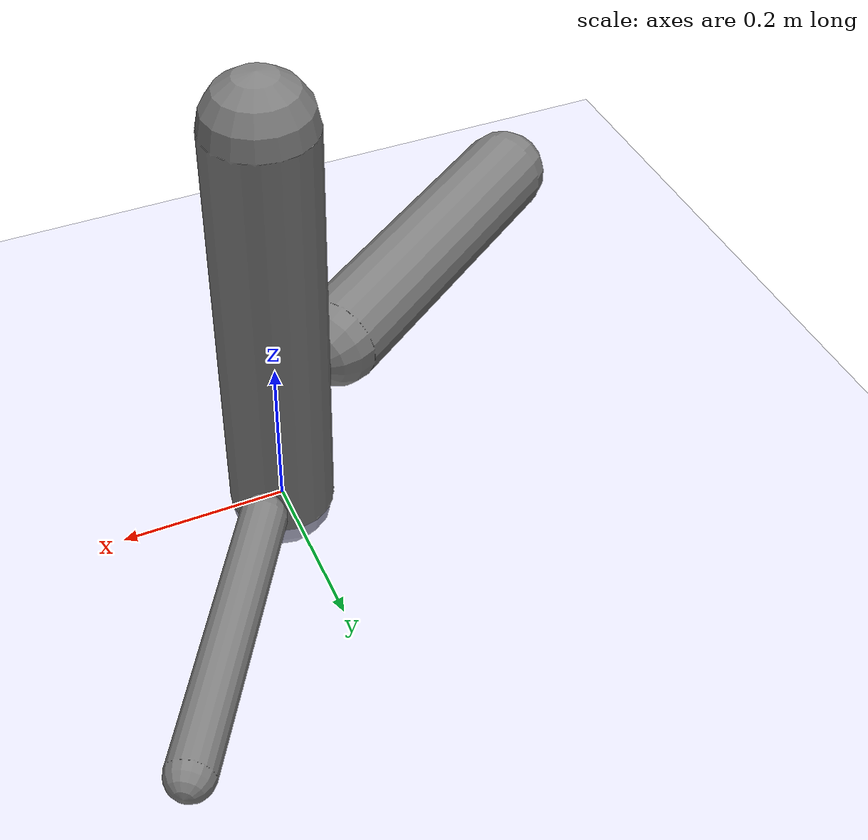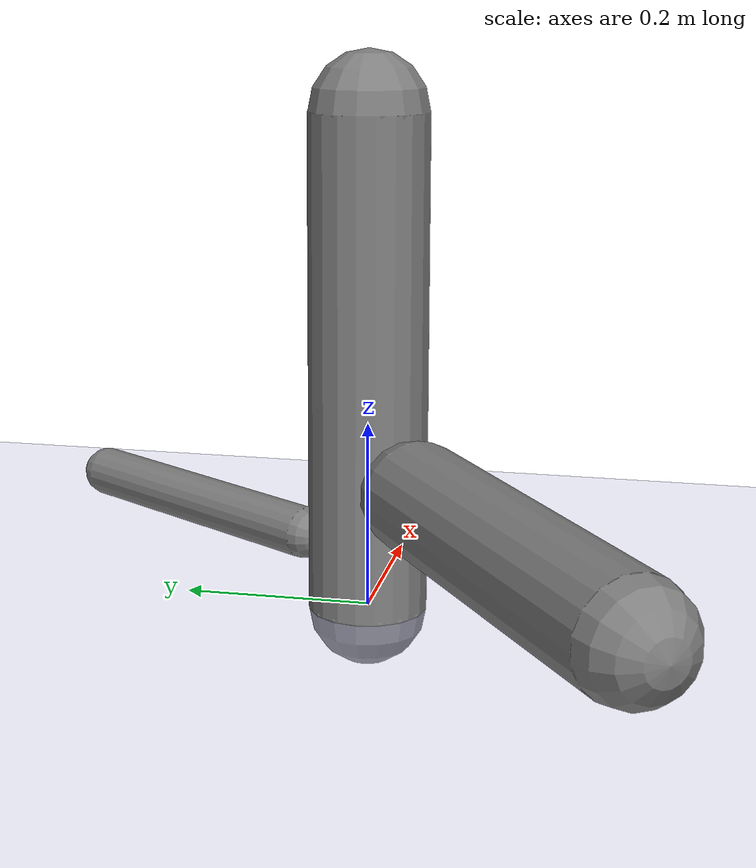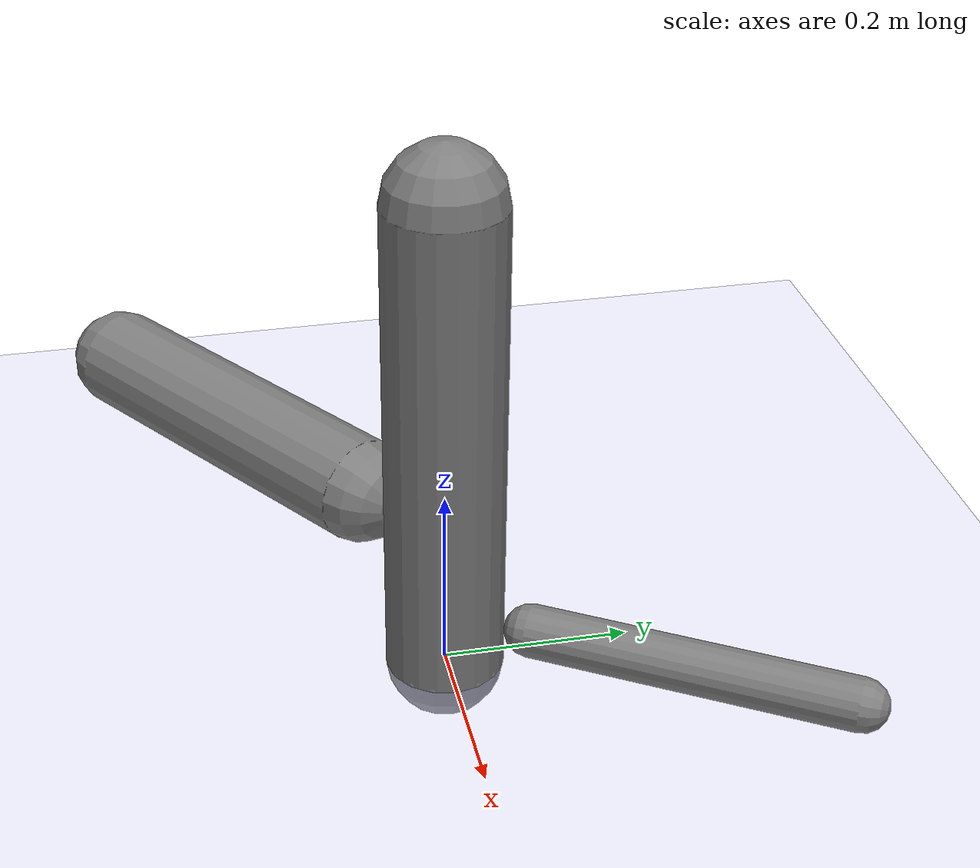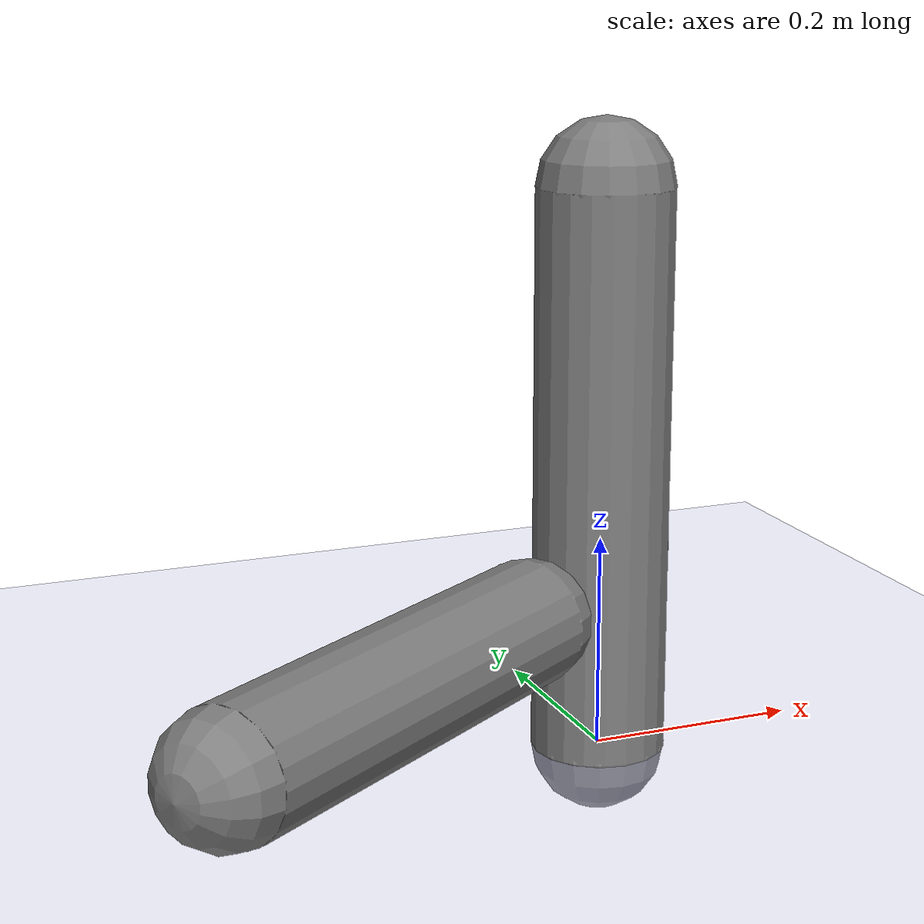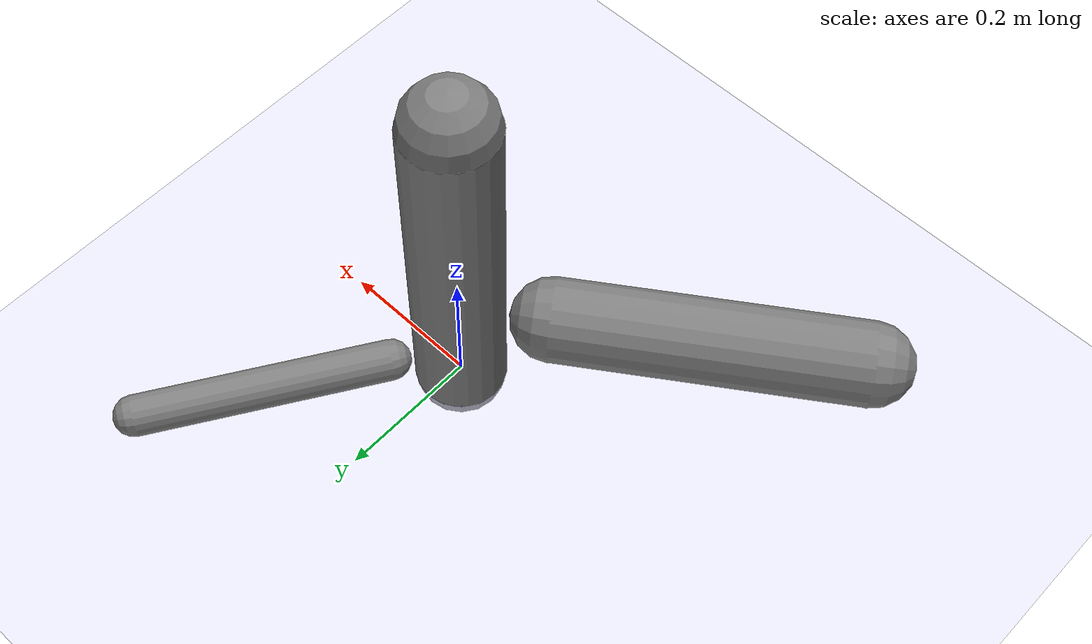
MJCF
<?xml version='1.0' encoding='UTF-8'?>
<mujoco model="robot_model">
  <worldbody>
    <light name="light" pos="0 -3 10" dir="0 0.5 -1" diffuse=".8 .8 .8" specular="0.1 0.1 0.1"/>
    <geom name="floor" type="plane" size="10.0 10.0 0.1" pos="0 0 0" rgba="0.8 0.8 1 1" contype="2" conaffinity="1"/>
    <body name="limb0" pos="0 0 0">
      <geom name="limb0_geom" type="capsule" fromto="0 0 0 0 0 0.525765723199866" size="0.06318729198528299" density="471.75457777310925" contype="1" conaffinity="2"/>
      <site type="sphere" size="0.01" name="limb0_site0" pos="-0.10205787699919176 -0.06987982683101357 0.15546221925872275" quat="0.7071067811865476 0.39948943052718733 -0.5834451087266594 0.0"/>
      <site type="sphere" size="0.01" name="limb0_site1" pos="0.05054136097072201 0.08099255214024285 0.058753170928810106" quat="0.7071067811865476 -0.5998881304749015 0.37434506930815514 0.0"/>
      <freejoint name="limb0_root"/>
      <body name="limb1" pos="-0.10205787699919176 -0.06987982683101357 0.15546221925872275" quat="0.7071067811865476 0.39948943052718733 -0.5834451087266594 0.0">
        <geom name="limb1_geom" type="capsule" fromto="0 0 0 0 0 0.40986089410600157" size="0.05650183629814618" density="557.4904918084212" contype="1" conaffinity="2"/>
        <joint name="joint_limb0_limb1_0" type="hinge" axis="1 0 0" range="-93.62338159474545 93.62338159474545" damping="5.0"/>
      </body>
      <body name="limb2" pos="0.05054136097072201 0.08099255214024285 0.058753170928810106" quat="0.7071067811865476 -0.5998881304749015 0.37434506930815514 0.0">
        <geom name="limb2_geom" type="capsule" fromto="0 0 0 0 0 0.34404380395359024" size="0.028281146102719583" density="411.2472681191295" contype="1" conaffinity="2"/>
        <joint name="joint_limb0_limb2_0" type="hinge" axis="0 1 0" range="-21.190973834101783 21.190973834101783" damping="5.0"/>
      </body>
    </body>
  </worldbody>
  <actuator>
    <position name="position_actuator_joint_limb0_limb1_0" joint="joint_limb0_limb1_0" gear="1.3885443040159904" inheritrange="1" forcerange="-13.564390487275977 13.564390487275977" forcelimited="true" kp="100.0"/>
    <position name="position_actuator_joint_limb0_limb2_0" joint="joint_limb0_limb2_0" gear="1.8948612854955176" inheritrange="1" forcerange="-1.972414712917439 1.972414712917439" forcelimited="true" kp="100.0"/>
  </actuator>
  <contact>
    <pair geom1="limb0_geom" geom2="limb1_geom"/>
    <pair geom1="limb0_geom" geom2="limb2_geom"/>
  </contact>
</mujoco>
